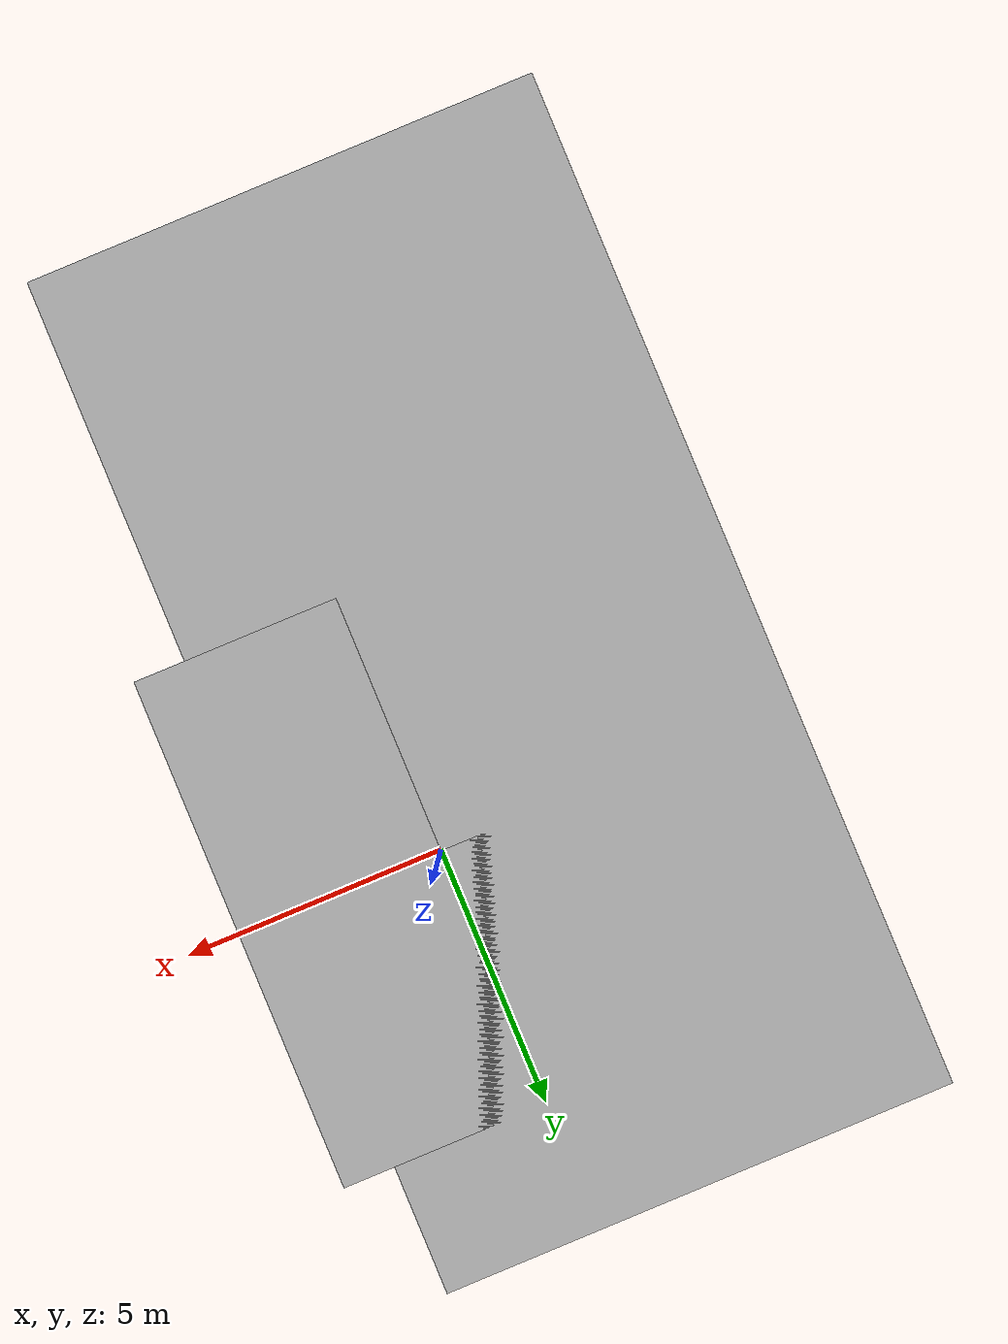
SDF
<sdf version="1.6">
 <world name="default">
  <atmosphere type="adiabatic"/>
  <wind><linear_velocity>0 0 0</linear_velocity></wind>
  <physics name="default_physics" default="1" type="ode">
   <max_step_size>0.001</max_step_size>
   <real_time_factor>1</real_time_factor>
   <real_time_update_rate>1000</real_time_update_rate>
  </physics>
  <gravity>0 0 -9.8</gravity>
  <include><uri>model://mud_box</uri></include>
  <include><uri>model://sun</uri></include>
 </world>
</sdf>

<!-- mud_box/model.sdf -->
<sdf version="1.5">
  <model name="mud_box">
    <static>true</static>
    <link name="link">
      <collision name="collision">
        <geometry>
          <box>
            <size>8 10 0.2</size>
          </box>
        </geometry>
      </collision>
      <visual name="visual_1">
        <pose>-2 2.5 0 0 0 0</pose>
        <cast_shadows>false</cast_shadows>
        <geometry>
          <box>
            <size>4 5 0.2</size>
          </box>
        </geometry>
        <material>
          <script>
            <uri>model://mud_box/materials/scripts</uri>
            <uri>model://mud_box/materials/textures</uri>
            <name>vrc/mud</name>
          </script>
        </material>
      </visual>
      <visual name="visual_2">
        <pose>2 2.5 0 0 0 0</pose>
        <cast_shadows>false</cast_shadows>
        <geometry>
          <box>
            <size>4 5 0.2</size>
          </box>
        </geometry>
        <material>
          <script>
            <uri>model://mud_box/materials/scripts</uri>
            <uri>model://mud_box/materials/textures</uri>
            <name>vrc/mud</name>
          </script>
        </material>
      </visual>
      <visual name="visual_3">
        <pose>2 -2.5 0 0 0 0</pose>
        <cast_shadows>false</cast_shadows>
        <geometry>
          <box>
            <size>4 5 0.2</size>
          </box>
        </geometry>
        <material>
          <script>
            <uri>model://mud_box/materials/scripts</uri>
            <uri>model://mud_box/materials/textures</uri>
            <name>vrc/mud</name>
          </script>
        </material>
      </visual>
      <visual name="visual_4">
        <pose>-2 -2.5 0 0 0 0</pose>
        <cast_shadows>false</cast_shadows>
        <geometry>
          <box>
            <size>10 20 0.2</size>
          </box>
        </geometry>
        <material>
          <script>
            <uri>model://mud_box/materials/scripts</uri>
            <uri>model://mud_box/materials/textures</uri>
            <name>vrc/mud</name>
          </script>
        </material>
      </visual>
    </link>
  </model>
</sdf>
